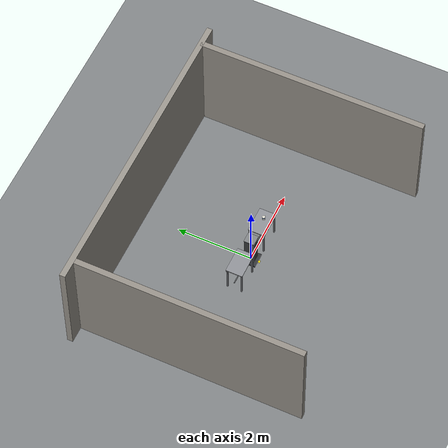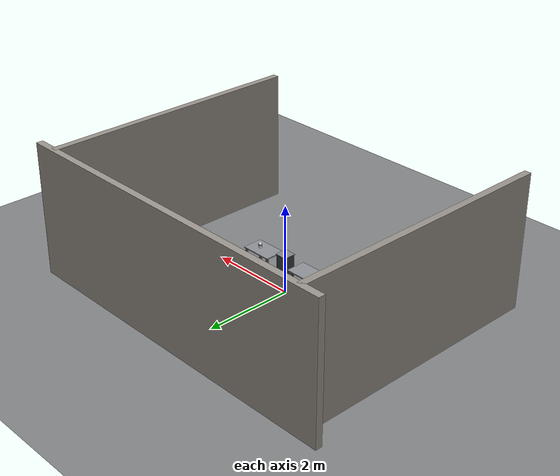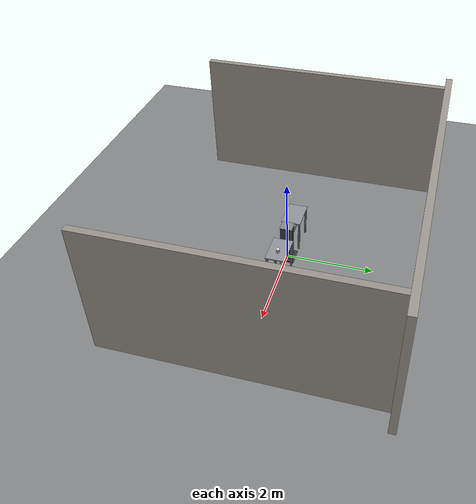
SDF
<?xml version="1.0" ?>
<sdf version="1.6">
  <world name="pick_place_world">

    <!-- ══ PHYSICS ══ -->
    <physics name="default_physics" default="0" type="ode">
      <max_step_size>0.001</max_step_size>
      <real_time_factor>1</real_time_factor>
      <real_time_update_rate>1000</real_time_update_rate>
      <ode>
        <solver>
          <type>quick</type>
          <iters>50</iters>
          <sor>1.3</sor>
        </solver>
        <constraints>
          <cfm>0.0</cfm>
          <erp>0.2</erp>
          <contact_max_correcting_vel>100.0</contact_max_correcting_vel>
          <contact_surface_layer>0.001</contact_surface_layer>
        </constraints>
      </ode>
    </physics>

    <!-- ══ SCENE ══ -->
    <scene>
      <ambient>0.35 0.35 0.38 1</ambient>
      <background>0.12 0.14 0.18 1</background>
      <shadows>true</shadows>
      <grid>false</grid>
      <origin_visual>false</origin_visual>
    </scene>

    <!-- ══ LIGHTING ══ -->
    <light name="factory_sun" type="directional">
      <cast_shadows>true</cast_shadows>
      <pose>0 0 10 0 0.5 0</pose>
      <diffuse>0.85 0.88 0.92 1</diffuse>
      <specular>0.40 0.42 0.45 1</specular>
      <attenuation><range>1000</range><constant>0.9</constant><linear>0.01</linear><quadratic>0.001</quadratic></attenuation>
      <direction>-0.5 0.1 -0.9</direction>
    </light>

    <light name="lamp_left" type="spot">
      <pose>1.5 0 3.5 0 0 0</pose>
      <diffuse>1.0 0.95 0.85 1</diffuse>
      <specular>0.3 0.28 0.22 1</specular>
      <attenuation><range>6</range><constant>0.3</constant><linear>0.15</linear><quadratic>0.03</quadratic></attenuation>
      <direction>0 0 -1</direction>
      <spot><inner_angle>0.6</inner_angle><outer_angle>1.1</outer_angle><falloff>2.0</falloff></spot>
      <cast_shadows>false</cast_shadows>
    </light>

    <light name="lamp_right" type="spot">
      <pose>-1.5 0 3.5 0 0 0</pose>
      <diffuse>1.0 0.95 0.85 1</diffuse>
      <specular>0.3 0.28 0.22 1</specular>
      <attenuation><range>6</range><constant>0.3</constant><linear>0.15</linear><quadratic>0.03</quadratic></attenuation>
      <direction>0 0 -1</direction>
      <spot><inner_angle>0.6</inner_angle><outer_angle>1.1</outer_angle><falloff>2.0</falloff></spot>
      <cast_shadows>false</cast_shadows>
    </light>

    <light name="fill_back" type="directional">
      <cast_shadows>false</cast_shadows>
      <pose>0 5 5 0 0 0</pose>
      <diffuse>0.20 0.25 0.40 1</diffuse>
      <specular>0.03 0.04 0.08 1</specular>
      <direction>0 -0.7 -0.7</direction>
    </light>

    <!-- ══ GAZEBO ROS STATE PLUGIN (provides /model_states) ══ -->
    <plugin name="gazebo_ros_state" filename="libgazebo_ros_state.so">
      <ros>
        <namespace>/</namespace>
        <remapping>model_states:=model_states</remapping>
        <remapping>link_states:=link_states</remapping>
      </ros>
      <update_rate>10.0</update_rate>
    </plugin>

    <!-- ══ GROUND PLANE (concrete floor) ══ -->
    <model name="factory_floor">
      <static>true</static>
      <link name="floor_link">
        <collision name="floor_col">
          <geometry><plane><normal>0 0 1</normal><size>20 20</size></plane></geometry>
          <surface><friction><ode><mu>0.8</mu><mu2>0.8</mu2></ode></friction></surface>
        </collision>
        <visual name="floor_vis">
          <cast_shadows>false</cast_shadows>
          <geometry><plane><normal>0 0 1</normal><size>20 20</size></plane></geometry>
          <material>
            <ambient>0.42 0.43 0.44 1</ambient>
            <diffuse>0.50 0.51 0.52 1</diffuse>
            <specular>0.06 0.06 0.06 1</specular>
          </material>
        </visual>
      </link>
    </model>

    <!-- ══ FACTORY WALLS ══ -->
    <model name="wall_back">
      <static>true</static>
      <pose>0 3 1.5 0 0 0</pose>
      <link name="w">
        <visual name="wv">
          <geometry><box><size>8 0.15 3.0</size></box></geometry>
          <material><ambient>0.55 0.53 0.50 1</ambient><diffuse>0.60 0.58 0.55 1</diffuse><specular>0.04 0.04 0.04 1</specular></material>
        </visual>
        <collision name="wc"><geometry><box><size>8 0.15 3.0</size></box></geometry></collision>
      </link>
    </model>

    <model name="wall_left">
      <static>true</static>
      <pose>3.5 0 1.5 0 0 1.5708</pose>
      <link name="w">
        <visual name="wv">
          <geometry><box><size>6 0.15 3.0</size></box></geometry>
          <material><ambient>0.52 0.50 0.48 1</ambient><diffuse>0.58 0.56 0.53 1</diffuse><specular>0.04 0.04 0.04 1</specular></material>
        </visual>
        <collision name="wc"><geometry><box><size>6 0.15 3.0</size></box></geometry></collision>
      </link>
    </model>

    <model name="wall_right">
      <static>true</static>
      <pose>-3.5 0 1.5 0 0 1.5708</pose>
      <link name="w">
        <visual name="wv">
          <geometry><box><size>6 0.15 3.0</size></box></geometry>
          <material><ambient>0.52 0.50 0.48 1</ambient><diffuse>0.58 0.56 0.53 1</diffuse><specular>0.04 0.04 0.04 1</specular></material>
        </visual>
        <collision name="wc"><geometry><box><size>6 0.15 3.0</size></box></geometry></collision>
      </link>
    </model>

    <!-- ══ ROBOT PEDESTAL — Inline ══ -->
    <model name="robot_pedestal">
      <static>true</static>
      <link name="column">
        <pose>0 0 0.45 0 0 0</pose>
        <visual name="col_vis">
          <geometry><box><size>0.25 0.25 0.90</size></box></geometry>
          <material><ambient>0.18 0.19 0.20 1</ambient><diffuse>0.22 0.23 0.24 1</diffuse><specular>0.25 0.25 0.25 1</specular></material>
        </visual>
        <collision name="col_col"><geometry><box><size>0.25 0.25 0.90</size></box></geometry></collision>
      </link>
      <link name="mount_plate">
        <pose>0 0 0.908 0 0 0</pose>
        <visual name="plate_vis">
          <geometry><box><size>0.28 0.28 0.016</size></box></geometry>
          <material><ambient>0.40 0.41 0.42 1</ambient><diffuse>0.50 0.51 0.52 1</diffuse><specular>0.75 0.75 0.75 1</specular></material>
        </visual>
        <collision name="plate_col"><geometry><box><size>0.28 0.28 0.016</size></box></geometry></collision>
      </link>
      <link name="base_plate">
        <pose>0 0 0.020 0 0 0</pose>
        <visual name="base_vis">
          <geometry><box><size>0.40 0.40 0.040</size></box></geometry>
          <material><ambient>0.15 0.16 0.17 1</ambient><diffuse>0.20 0.21 0.22 1</diffuse><specular>0.20 0.20 0.20 1</specular></material>
        </visual>
        <collision name="base_col"><geometry><box><size>0.40 0.40 0.040</size></box></geometry></collision>
      </link>
    </model>

    <!-- ══ TABLE 1  (X = +0.65) — Inline ══ -->
    <model name="table_1">
      <static>true</static>
      <pose>0.65 0 0 0 0 0</pose>
      <!-- Tabletop -->
      <link name="tabletop">
        <pose>0 0 0.748 0 0 0</pose>
        <visual name="top_vis">
          <geometry><box><size>0.70 0.45 0.025</size></box></geometry>
          <material><ambient>0.45 0.46 0.48 1</ambient><diffuse>0.55 0.56 0.58 1</diffuse><specular>0.80 0.80 0.80 1</specular></material>
        </visual>
        <collision name="top_col">
          <geometry><box><size>0.70 0.45 0.025</size></box></geometry>
          <surface><friction><ode><mu>0.7</mu><mu2>0.7</mu2></ode></friction></surface>
        </collision>
      </link>
      <!-- 4 Legs -->
      <link name="leg_fl"><pose>-0.31 -0.19 0.368 0 0 0</pose>
        <visual name="v"><geometry><box><size>0.040 0.040 0.735</size></box></geometry><material><ambient>0.30 0.31 0.32 1</ambient><diffuse>0.38 0.39 0.40 1</diffuse><specular>0.65 0.65 0.65 1</specular></material></visual>
        <collision name="c"><geometry><box><size>0.040 0.040 0.735</size></box></geometry></collision></link>
      <link name="leg_fr"><pose>0.31 -0.19 0.368 0 0 0</pose>
        <visual name="v"><geometry><box><size>0.040 0.040 0.735</size></box></geometry><material><ambient>0.30 0.31 0.32 1</ambient><diffuse>0.38 0.39 0.40 1</diffuse><specular>0.65 0.65 0.65 1</specular></material></visual>
        <collision name="c"><geometry><box><size>0.040 0.040 0.735</size></box></geometry></collision></link>
      <link name="leg_bl"><pose>-0.31 0.19 0.368 0 0 0</pose>
        <visual name="v"><geometry><box><size>0.040 0.040 0.735</size></box></geometry><material><ambient>0.30 0.31 0.32 1</ambient><diffuse>0.38 0.39 0.40 1</diffuse><specular>0.65 0.65 0.65 1</specular></material></visual>
        <collision name="c"><geometry><box><size>0.040 0.040 0.735</size></box></geometry></collision></link>
      <link name="leg_br"><pose>0.31 0.19 0.368 0 0 0</pose>
        <visual name="v"><geometry><box><size>0.040 0.040 0.735</size></box></geometry><material><ambient>0.30 0.31 0.32 1</ambient><diffuse>0.38 0.39 0.40 1</diffuse><specular>0.65 0.65 0.65 1</specular></material></visual>
        <collision name="c"><geometry><box><size>0.040 0.040 0.735</size></box></geometry></collision></link>
      <!-- Cross brace -->
      <link name="brace"><pose>0 0 0.28 0 0 0</pose>
        <visual name="bv"><geometry><box><size>0.650 0.025 0.020</size></box></geometry><material><ambient>0.28 0.29 0.30 1</ambient><diffuse>0.34 0.35 0.36 1</diffuse><specular>0.4 0.4 0.4 1</specular></material></visual></link>
    </model>

    <!-- ══ TABLE 2  (X = -0.65) — Inline ══ -->
    <model name="table_2">
      <static>true</static>
      <pose>-0.65 0 0 0 0 0</pose>
      <link name="tabletop">
        <pose>0 0 0.748 0 0 0</pose>
        <visual name="top_vis">
          <geometry><box><size>0.70 0.45 0.025</size></box></geometry>
          <material><ambient>0.45 0.46 0.48 1</ambient><diffuse>0.55 0.56 0.58 1</diffuse><specular>0.80 0.80 0.80 1</specular></material>
        </visual>
        <collision name="top_col">
          <geometry><box><size>0.70 0.45 0.025</size></box></geometry>
          <surface><friction><ode><mu>0.7</mu><mu2>0.7</mu2></ode></friction></surface>
        </collision>
      </link>
      <link name="leg_fl"><pose>-0.31 -0.19 0.368 0 0 0</pose>
        <visual name="v"><geometry><box><size>0.040 0.040 0.735</size></box></geometry><material><ambient>0.30 0.31 0.32 1</ambient><diffuse>0.38 0.39 0.40 1</diffuse><specular>0.65 0.65 0.65 1</specular></material></visual>
        <collision name="c"><geometry><box><size>0.040 0.040 0.735</size></box></geometry></collision></link>
      <link name="leg_fr"><pose>0.31 -0.19 0.368 0 0 0</pose>
        <visual name="v"><geometry><box><size>0.040 0.040 0.735</size></box></geometry><material><ambient>0.30 0.31 0.32 1</ambient><diffuse>0.38 0.39 0.40 1</diffuse><specular>0.65 0.65 0.65 1</specular></material></visual>
        <collision name="c"><geometry><box><size>0.040 0.040 0.735</size></box></geometry></collision></link>
      <link name="leg_bl"><pose>-0.31 0.19 0.368 0 0 0</pose>
        <visual name="v"><geometry><box><size>0.040 0.040 0.735</size></box></geometry><material><ambient>0.30 0.31 0.32 1</ambient><diffuse>0.38 0.39 0.40 1</diffuse><specular>0.65 0.65 0.65 1</specular></material></visual>
        <collision name="c"><geometry><box><size>0.040 0.040 0.735</size></box></geometry></collision></link>
      <link name="leg_br"><pose>0.31 0.19 0.368 0 0 0</pose>
        <visual name="v"><geometry><box><size>0.040 0.040 0.735</size></box></geometry><material><ambient>0.30 0.31 0.32 1</ambient><diffuse>0.38 0.39 0.40 1</diffuse><specular>0.65 0.65 0.65 1</specular></material></visual>
        <collision name="c"><geometry><box><size>0.040 0.040 0.735</size></box></geometry></collision></link>
      <link name="brace"><pose>0 0 0.28 0 0 0</pose>
        <visual name="bv"><geometry><box><size>0.650 0.025 0.020</size></box></geometry><material><ambient>0.28 0.29 0.30 1</ambient><diffuse>0.34 0.35 0.36 1</diffuse><specular>0.4 0.4 0.4 1</specular></material></visual></link>
    </model>

    <!-- ══ COFFEE CUP — Inline, starts on Table 1 ══ -->
    <!-- Table top Z = 0.748 + 0.0125 = 0.7605 ; cup center = 0.7605 + 0.0475 = 0.808 -->
    <model name="my_coffee_cup">
      <pose>0.75 0 0.808 0 0 0</pose>
      <link name="link">
        <inertial>
          <mass>0.3</mass>
          <inertia><ixx>0.000350</ixx><ixy>0</ixy><ixz>0</ixz><iyy>0.000350</iyy><iyz>0</iyz><izz>0.000220</izz></inertia>
        </inertial>
        <!-- Mug body (white ceramic) -->
        <visual name="body_vis">
          <pose>0 0 0 0 0 0</pose>
          <geometry><cylinder><radius>0.038</radius><length>0.095</length></cylinder></geometry>
          <material><ambient>0.95 0.94 0.90 1</ambient><diffuse>0.92 0.90 0.85 1</diffuse><specular>0.45 0.45 0.45 1</specular></material>
        </visual>
        <!-- Lip ring -->
        <visual name="lip_vis">
          <pose>0 0 0.049 0 0 0</pose>
          <geometry><cylinder><radius>0.040</radius><length>0.006</length></cylinder></geometry>
          <material><ambient>0.88 0.87 0.83 1</ambient><diffuse>0.86 0.85 0.81 1</diffuse><specular>0.5 0.5 0.5 1</specular></material>
        </visual>
        <!-- Blue decorative stripe -->
        <visual name="stripe_vis">
          <pose>0 0 0.010 0 0 0</pose>
          <geometry><cylinder><radius>0.0382</radius><length>0.018</length></cylinder></geometry>
          <material><ambient>0.10 0.35 0.65 1</ambient><diffuse>0.12 0.38 0.70 1</diffuse><specular>0.2 0.2 0.2 1</specular></material>
        </visual>
        <!-- Handle -->
        <visual name="handle_vis">
          <pose>0.052 0 0.0 0 0 0</pose>
          <geometry><box><size>0.016 0.010 0.055</size></box></geometry>
          <material><ambient>0.93 0.92 0.88 1</ambient><diffuse>0.90 0.88 0.84 1</diffuse><specular>0.4 0.4 0.4 1</specular></material>
        </visual>
        <!-- Collision -->
        <collision name="body_col">
          <pose>0 0 0 0 0 0</pose>
          <geometry><cylinder><radius>0.038</radius><length>0.095</length></cylinder></geometry>
          <surface>
            <friction><ode><mu>0.8</mu><mu2>0.8</mu2></ode></friction>
            <contact><ode><kp>1e6</kp><kd>100</kd></ode></contact>
          </surface>
        </collision>
        <collision name="handle_col">
          <pose>0.052 0 0 0 0 0</pose>
          <geometry><box><size>0.016 0.010 0.055</size></box></geometry>
        </collision>
      </link>
    </model>

    <!-- ══ FLOOR SAFETY STRIPE ══ -->
    <model name="floor_marking">
      <static>true</static>
      <pose>0 0 0.002 0 0 0</pose>
      <link name="mark">
        <visual name="mark_v">
          <geometry><box><size>0.06 0.50 0.002</size></box></geometry>
          <material><ambient>0.9 0.75 0.0 1</ambient><diffuse>1.0 0.85 0.0 1</diffuse></material>
        </visual>
      </link>
    </model>

    <!-- ══ CAMERA PRESET ══ -->
    <gui fullscreen="0">
      <camera name="user_camera">
        <pose>2.5 -2.0 1.8 0 0.38 2.50</pose>
        <view_controller>orbit</view_controller>
        <projection_type>perspective</projection_type>
      </camera>
    </gui>

  </world>
</sdf>
